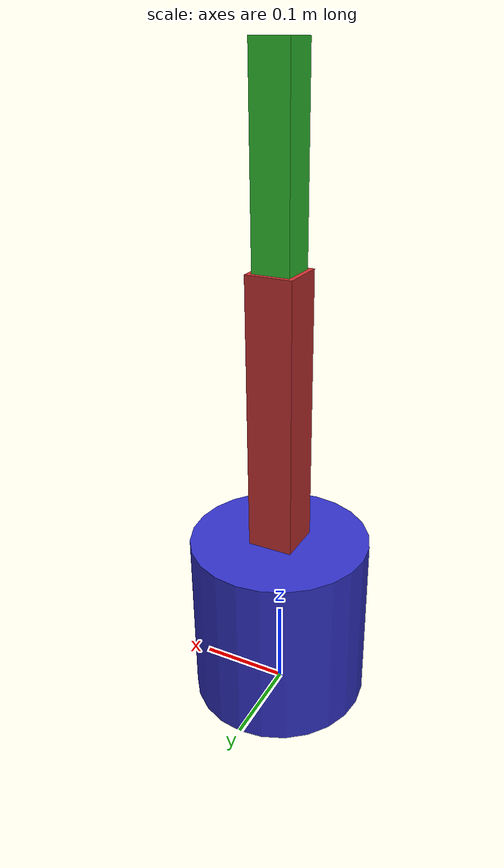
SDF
<?xml version="1.0" ?>
<!--
  Simple Robot Model for Module 2 Examples

  This is a basic two-link robot arm for demonstrating
  Gazebo fundamentals, sensors, and control integration.
-->
<sdf version="1.9">
  <model name="simple_robot">
    <static>false</static>

    <!-- Base Link (fixed to world) -->
    <link name="base_link">
      <pose>0 0 0.1 0 0 0</pose>
      <inertial>
        <mass>5.0</mass>
        <inertia>
          <ixx>0.1</ixx>
          <iyy>0.1</iyy>
          <izz>0.1</izz>
        </inertia>
      </inertial>
      <visual name="base_visual">
        <geometry>
          <cylinder>
            <radius>0.1</radius>
            <length>0.2</length>
          </cylinder>
        </geometry>
        <material>
          <ambient>0.2 0.2 0.8 1</ambient>
          <diffuse>0.2 0.2 0.8 1</diffuse>
        </material>
      </visual>
      <collision name="base_collision">
        <geometry>
          <cylinder>
            <radius>0.1</radius>
            <length>0.2</length>
          </cylinder>
        </geometry>
      </collision>
    </link>

    <!-- Upper Arm Link -->
    <link name="upper_arm">
      <pose>0 0 0.35 0 0 0</pose>
      <inertial>
        <mass>2.0</mass>
        <inertia>
          <ixx>0.02</ixx>
          <iyy>0.02</iyy>
          <izz>0.01</izz>
        </inertia>
      </inertial>
      <visual name="upper_arm_visual">
        <geometry>
          <box>
            <size>0.05 0.05 0.3</size>
          </box>
        </geometry>
        <material>
          <ambient>0.8 0.2 0.2 1</ambient>
          <diffuse>0.8 0.2 0.2 1</diffuse>
        </material>
      </visual>
      <collision name="upper_arm_collision">
        <geometry>
          <box>
            <size>0.05 0.05 0.3</size>
          </box>
        </geometry>
      </collision>
    </link>

    <!-- Lower Arm Link -->
    <link name="lower_arm">
      <pose>0 0 0.6 0 0 0</pose>
      <inertial>
        <mass>1.0</mass>
        <inertia>
          <ixx>0.01</ixx>
          <iyy>0.01</iyy>
          <izz>0.005</izz>
        </inertia>
      </inertial>
      <visual name="lower_arm_visual">
        <geometry>
          <box>
            <size>0.04 0.04 0.2</size>
          </box>
        </geometry>
        <material>
          <ambient>0.2 0.8 0.2 1</ambient>
          <diffuse>0.2 0.8 0.2 1</diffuse>
        </material>
      </visual>
      <collision name="lower_arm_collision">
        <geometry>
          <box>
            <size>0.04 0.04 0.2</size>
          </box>
        </geometry>
      </collision>
    </link>

    <!-- Shoulder Joint -->
    <joint name="shoulder_joint" type="revolute">
      <parent>base_link</parent>
      <child>upper_arm</child>
      <pose>0 0 -0.15 0 0 0</pose>
      <axis>
        <xyz>0 1 0</xyz>
        <limit>
          <lower>-1.57</lower>
          <upper>1.57</upper>
          <effort>100</effort>
          <velocity>1.0</velocity>
        </limit>
        <dynamics>
          <damping>0.5</damping>
          <friction>0.1</friction>
        </dynamics>
      </axis>
    </joint>

    <!-- Elbow Joint -->
    <joint name="elbow_joint" type="revolute">
      <parent>upper_arm</parent>
      <child>lower_arm</child>
      <pose>0 0 -0.1 0 0 0</pose>
      <axis>
        <xyz>0 1 0</xyz>
        <limit>
          <lower>-2.0</lower>
          <upper>2.0</upper>
          <effort>50</effort>
          <velocity>1.0</velocity>
        </limit>
        <dynamics>
          <damping>0.3</damping>
          <friction>0.1</friction>
        </dynamics>
      </axis>
    </joint>

    <!-- Fixed joint to world (comment out for free-standing robot) -->
    <joint name="world_joint" type="fixed">
      <parent>world</parent>
      <child>base_link</child>
    </joint>

  </model>
</sdf>
